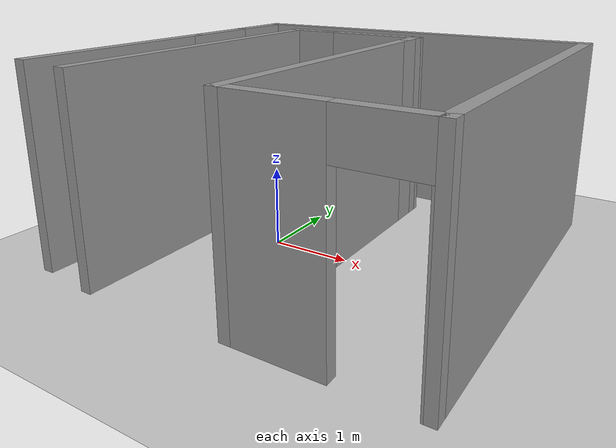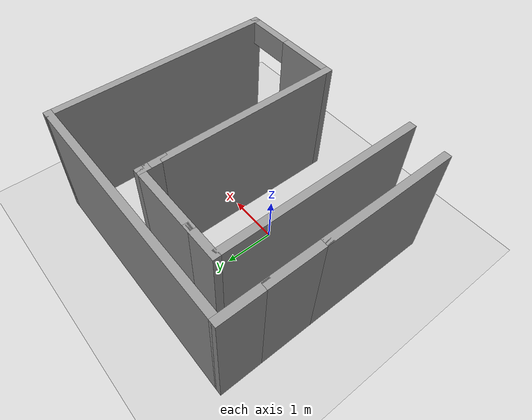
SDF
<sdf version="1.7">
 <world name="default">
  <light name="sun" type="directional">
   <pose>0 0 10 0 -0 0</pose>
   <diffuse>0.8 0.8 0.8 1</diffuse>
   <specular>0.2 0.2 0.2 1</specular>
   <attenuation>
    <range>1000</range>
    <constant>0.9</constant>
    <linear>0.01</linear>
    <quadratic>0.001</quadratic>
   </attenuation>
   <direction>-0.5 0.1 -0.9</direction>
   <spot><inner_angle>0</inner_angle><outer_angle>0</outer_angle><falloff>0</falloff></spot>
  </light>
  <model name="ground_plane">
   <static>1</static>
   <link name="link">
    <collision name="collision">
     <geometry><plane><normal>0 0 1</normal><size>100 100</size></plane></geometry>
     <surface><friction><ode><mu>100</mu><mu2>50</mu2></ode></friction></surface>
    </collision>
    <visual name="visual">
     <cast_shadows>0</cast_shadows>
     <geometry><plane><normal>0 0 1</normal><size>100 100</size></plane></geometry>
     <material>
      <script><uri>file://media/materials/scripts/gazebo.material</uri><name>Gazebo/Grey</name></script>
     </material>
    </visual>
   </link>
  </model>
  <gravity>0 0 -9.8</gravity>
  <magnetic_field>6e-06 2.3e-05 -4.2e-05</magnetic_field>
  <atmosphere type="adiabatic"/>
  <physics type="ode">
   <max_step_size>0.001</max_step_size>
   <real_time_factor>1</real_time_factor>
   <real_time_update_rate>1000</real_time_update_rate>
  </physics>
  <scene><ambient>0.4 0.4 0.4 1</ambient><background>0.7 0.7 0.7 1</background><shadows>1</shadows></scene>
  <audio><device>default</device></audio>
  <spherical_coordinates>
   <surface_model>EARTH_WGS84</surface_model>
   <latitude_deg>0</latitude_deg>
   <longitude_deg>0</longitude_deg>
   <elevation>0</elevation>
   <heading_deg>0</heading_deg>
  </spherical_coordinates>
  <model name="my_bot">
   <link name="base_link">
    <inertial>
     <pose>0.055714 0 0.078571 0 -0 0</pose>
     <mass>0.7</mass>
     <inertia>
      <ixx>0.0064169</ixx>
      <ixy>0</ixy>
      <ixz>0.00118929</ixz>
      <iyy>0.00745405</iyy>
      <iyz>0</iyz>
      <izz>0.00876214</izz>
     </inertia>
    </inertial>
    <collision name="base_link_fixed_joint_lump__chassis_collision">
     <pose>0.05 0 0.075 0 -0 0</pose>
     <geometry><box><size>0.3 0.3 0.15</size></box></geometry>
    </collision>
    <collision name="base_link_fixed_joint_lump__caster_wheel_collision_1">
     <pose>0.14 0 0 0 -0 0</pose>
     <geometry><sphere><radius>0.05</radius></sphere></geometry>
     <surface><friction><ode><mu>0.001</mu><mu2>0.001</mu2></ode></friction></surface>
    </collision>
    <collision name="base_link_fixed_joint_lump__laser_frame_collision_2">
     <pose>0 0 0.175 0 -0 0</pose>
     <geometry><cylinder><length>0.04</length><radius>0.05</radius></cylinder></geometry>
    </collision>
    <visual name="base_link_fixed_joint_lump__chassis_visual">
     <pose>0.05 0 0.075 0 -0 0</pose>
     <geometry><box><size>0.3 0.3 0.15</size></box></geometry>
     <material>
      <script><name>Gazebo/White</name><uri>file://media/materials/scripts/gazebo.material</uri></script>
     </material>
    </visual>
    <visual name="base_link_fixed_joint_lump__caster_wheel_visual_1">
     <pose>0.14 0 0 0 -0 0</pose>
     <geometry><sphere><radius>0.05</radius></sphere></geometry>
     <material>
      <script><name>Gazebo/Black</name><uri>file://media/materials/scripts/gazebo.material</uri></script>
     </material>
    </visual>
    <visual name="base_link_fixed_joint_lump__laser_frame_visual_2">
     <pose>0 0 0.175 0 -0 0</pose>
     <geometry><cylinder><length>0.04</length><radius>0.05</radius></cylinder></geometry>
     <material>
      <script><name>Gazebo/Red</name><uri>file://media/materials/scripts/gazebo.material</uri></script>
     </material>
    </visual>
    <sensor name="laser" type="ray">
     <visualize>1</visualize>
     <update_rate>10</update_rate>
     <ray>
      <scan>
       <horizontal>
        <samples>360</samples>
        <resolution>1</resolution>
        <min_angle>-3.14</min_angle>
        <max_angle>3.14</max_angle>
       </horizontal>
       <vertical><samples>1</samples><min_angle>0</min_angle><max_angle>0</max_angle></vertical>
      </scan>
      <range><min>0.3</min><max>12</max><resolution>0.01</resolution></range>
     </ray>
     <plugin name="laser_controller" filename="libgazebo_ros_ray_sensor.so">
      <ros><argument>~/out:=scan</argument></ros>
      <output_type>sensor_msgs/LaserScan</output_type>
      <frame_name>laser_frame</frame_name>
     </plugin>
     <pose>0 0 0.175 0 -0 0</pose>
    </sensor>
   </link>
   <joint name="left_wheel_joint" type="revolute">
    <pose relative_to="base_link">0 0.175 0 -1.5708 0 0</pose>
    <parent>base_link</parent>
    <child>left_wheel</child>
    <axis>
     <xyz>0 0 1</xyz>
     <limit><lower>-1e+16</lower><upper>1e+16</upper></limit>
     <dynamics><spring_reference>0</spring_reference><spring_stiffness>0</spring_stiffness></dynamics>
    </axis>
   </joint>
   <link name="left_wheel">
    <pose relative_to="left_wheel_joint">0 0 0 0 -0 0</pose>
    <inertial>
     <mass>0.1</mass>
     <inertia>
      <ixx>7.58333e-05</ixx>
      <ixy>0</ixy>
      <ixz>0</ixz>
      <iyy>7.58333e-05</iyy>
      <iyz>0</iyz>
      <izz>0.000125</izz>
     </inertia>
    </inertial>
    <collision name="left_wheel_collision">
     <geometry><cylinder><length>0.04</length><radius>0.05</radius></cylinder></geometry>
    </collision>
    <visual name="left_wheel_visual">
     <geometry><cylinder><length>0.04</length><radius>0.05</radius></cylinder></geometry>
     <material>
      <script><name>Gazebo/Blue</name><uri>file://media/materials/scripts/gazebo.material</uri></script>
     </material>
    </visual>
   </link>
   <joint name="right_wheel_joint" type="revolute">
    <pose relative_to="base_link">0 -0.175 0 1.5708 -0 0</pose>
    <parent>base_link</parent>
    <child>right_wheel</child>
    <axis>
     <xyz>0 0 -1</xyz>
     <limit><lower>-1e+16</lower><upper>1e+16</upper></limit>
     <dynamics><spring_reference>0</spring_reference><spring_stiffness>0</spring_stiffness></dynamics>
    </axis>
   </joint>
   <link name="right_wheel">
    <pose relative_to="right_wheel_joint">0 0 0 0 -0 0</pose>
    <inertial>
     <mass>0.1</mass>
     <inertia>
      <ixx>7.58333e-05</ixx>
      <ixy>0</ixy>
      <ixz>0</ixz>
      <iyy>7.58333e-05</iyy>
      <iyz>0</iyz>
      <izz>0.000125</izz>
     </inertia>
    </inertial>
    <collision name="right_wheel_collision">
     <geometry><cylinder><length>0.04</length><radius>0.05</radius></cylinder></geometry>
    </collision>
    <visual name="right_wheel_visual">
     <geometry><cylinder><length>0.04</length><radius>0.05</radius></cylinder></geometry>
     <material>
      <script><name>Gazebo/Blue</name><uri>file://media/materials/scripts/gazebo.material</uri></script>
     </material>
    </visual>
   </link>
   <static>0</static>
   <plugin name="diff_drive" filename="libgazebo_ros_diff_drive.so">
    <left_joint>left_wheel_joint</left_joint>
    <right_joint>right_wheel_joint</right_joint>
    <wheel_separation>0.35</wheel_separation>
    <wheel_diameter>0.1</wheel_diameter>
    <max_wheel_torque>200</max_wheel_torque>
    <max_wheel_acceleration>10.0</max_wheel_acceleration>
    <odometry_frame>odom</odometry_frame>
    <robot_base_frame>base_link</robot_base_frame>
    <publish_odom>1</publish_odom>
    <publish_odom_tf>1</publish_odom_tf>
    <publish_wheel_tf>1</publish_wheel_tf>
   </plugin>
   <pose>0.000531 8e-06 0.05 0 1e-06 -1.3e-05</pose>
  </model>
  <model name="House">
   <pose>0.600886 0.217407 0 0 -0 0</pose>
   <link name="Wall_0">
    <collision name="Wall_0_Collision">
     <geometry><box><size>2.75 0.15 2.5</size></box></geometry>
     <pose>0 0 1.25 0 -0 0</pose>
    </collision>
    <visual name="Wall_0_Visual">
     <pose>0 0 1.25 0 -0 0</pose>
     <geometry><box><size>2.75 0.15 2.5</size></box></geometry>
     <material>
      <script><uri>file://media/materials/scripts/gazebo.material</uri><name>Gazebo/Grey</name></script>
      <ambient>1 1 1 1</ambient>
     </material>
     <meta><layer>0</layer></meta>
    </visual>
    <pose>-2.425 -0.925 0 0 -0 1.5708</pose>
   </link>
   <link name="Wall_10">
    <collision name="Wall_10_Collision">
     <geometry><box><size>0.5 0.15 2.5</size></box></geometry>
     <pose>0 0 1.25 0 -0 0</pose>
    </collision>
    <visual name="Wall_10_Visual">
     <pose>0 0 1.25 0 -0 0</pose>
     <geometry><box><size>0.5 0.15 2.5</size></box></geometry>
     <material>
      <script><uri>file://media/materials/scripts/gazebo.material</uri><name>Gazebo/Grey</name></script>
      <ambient>1 1 1 1</ambient>
     </material>
     <meta><layer>0</layer></meta>
    </visual>
    <pose>0.325 1.5 0 0 -0 1.5708</pose>
   </link>
   <link name="Wall_11">
    <collision name="Wall_11_Collision">
     <geometry><box><size>0.25 0.15 2.5</size></box></geometry>
     <pose>0 0 1.25 0 -0 0</pose>
    </collision>
    <visual name="Wall_11_Visual">
     <pose>0 0 1.25 0 -0 0</pose>
     <geometry><box><size>0.25 0.15 2.5</size></box></geometry>
     <material>
      <script><uri>file://media/materials/scripts/gazebo.material</uri><name>Gazebo/Grey</name></script>
      <ambient>1 1 1 1</ambient>
     </material>
     <meta><layer>0</layer></meta>
    </visual>
    <pose>0.325 1.725 0 0 -0 1.5708</pose>
   </link>
   <link name="Wall_12">
    <collision name="Wall_12_Collision">
     <geometry><box><size>1.5 0.15 2.5</size></box></geometry>
     <pose>0 0 1.25 0 -0 0</pose>
    </collision>
    <visual name="Wall_12_Visual">
     <pose>0 0 1.25 0 -0 0</pose>
     <geometry><box><size>1.5 0.15 2.5</size></box></geometry>
     <material>
      <script><uri>file://media/materials/scripts/gazebo.material</uri><name>Gazebo/Grey</name></script>
      <ambient>1 1 1 1</ambient>
     </material>
     <meta><layer>0</layer></meta>
    </visual>
    <pose>-0.35 1.775 0 0 -0 3.14159</pose>
   </link>
   <link name="Wall_13">
    <collision name="Wall_13_Collision">
     <geometry><box><size>0.75 0.15 2.5</size></box></geometry>
     <pose>0 0 1.25 0 -0 0</pose>
    </collision>
    <visual name="Wall_13_Visual">
     <pose>0 0 1.25 0 -0 0</pose>
     <geometry><box><size>0.75 0.15 2.5</size></box></geometry>
     <material>
      <script><uri>file://media/materials/scripts/gazebo.material</uri><name>Gazebo/Grey</name></script>
      <ambient>1 1 1 1</ambient>
     </material>
     <meta><layer>0</layer></meta>
    </visual>
    <pose>-1.325 1.775 0 0 -0 3.14159</pose>
   </link>
   <link name="Wall_14">
    <collision name="Wall_14_Collision">
     <geometry><box><size>4.25 0.15 2.5</size></box></geometry>
     <pose>0 0 1.25 0 -0 0</pose>
    </collision>
    <visual name="Wall_14_Visual">
     <pose>0 0 1.25 0 -0 0</pose>
     <geometry><box><size>4.25 0.15 2.5</size></box></geometry>
     <material>
      <script><uri>file://media/materials/scripts/gazebo.material</uri><name>Gazebo/Grey</name></script>
      <ambient>1 1 1 1</ambient>
     </material>
     <meta><layer>0</layer></meta>
    </visual>
    <pose>-1.625 -0.275 0 0 -0 -1.5708</pose>
   </link>
   <link name="Wall_4">
    <collision name="Wall_4_Collision">
     <geometry><box><size>1.25 0.15 2.5</size></box></geometry>
     <pose>0 0 1.25 0 -0 0</pose>
    </collision>
    <visual name="Wall_4_Visual">
     <pose>0 0 1.25 0 -0 0</pose>
     <geometry><box><size>1.25 0.15 2.5</size></box></geometry>
     <material>
      <script><uri>file://media/materials/scripts/gazebo.material</uri><name>Gazebo/Grey</name></script>
      <ambient>1 1 1 1</ambient>
     </material>
     <meta><layer>0</layer></meta>
    </visual>
    <pose>-2.425 0.925 0 0 -0 1.5708</pose>
   </link>
   <link name="Wall_5">
    <collision name="Wall_5_Collision">
     <geometry><box><size>1 0.15 2.5</size></box></geometry>
     <pose>0 0 1.25 0 -0 0</pose>
    </collision>
    <visual name="Wall_5_Visual">
     <pose>0 0 1.25 0 -0 0</pose>
     <geometry><box><size>1 0.15 2.5</size></box></geometry>
     <material>
      <script><uri>file://media/materials/scripts/gazebo.material</uri><name>Gazebo/Grey</name></script>
      <ambient>1 1 1 1</ambient>
     </material>
     <meta><layer>0</layer></meta>
    </visual>
    <pose>-2.425 1.9 0 0 -0 1.5708</pose>
   </link>
   <link name="Wall_6">
    <collision name="Wall_6_Collision">
     <geometry><box><size>5 0.15 2.5</size></box></geometry>
     <pose>0 0 1.25 0 -0 0</pose>
    </collision>
    <visual name="Wall_6_Visual">
     <pose>0 0 1.25 0 -0 0</pose>
     <geometry><box><size>5 0.15 2.5</size></box></geometry>
     <material>
      <script><uri>file://media/materials/scripts/gazebo.material</uri><name>Gazebo/Grey</name></script>
      <ambient>1 1 1 1</ambient>
     </material>
     <meta><layer>0</layer></meta>
    </visual>
    <pose>-0 2.325 0 0 -0 0</pose>
   </link>
   <link name="Wall_7">
    <collision name="Wall_7_Collision">
     <geometry><box><size>4.75 0.15 2.5</size></box></geometry>
     <pose>0 0 1.25 0 -0 0</pose>
    </collision>
    <visual name="Wall_7_Visual">
     <pose>0 0 1.25 0 -0 0</pose>
     <geometry><box><size>4.75 0.15 2.5</size></box></geometry>
     <material>
      <script><uri>file://media/materials/scripts/gazebo.material</uri><name>Gazebo/Grey</name></script>
      <ambient>1 1 1 1</ambient>
     </material>
     <meta><layer>0</layer></meta>
    </visual>
    <pose>2.425 0.025 0 0 -0 -1.5708</pose>
   </link>
   <link name="Wall_8">
    <pose>1.375 -2.275 0 0 -0 3.14159</pose>
    <visual name="Wall_8_Visual_0">
     <pose>-1.06269 0 1.25 0 -0 0</pose>
     <geometry><box><size>0.124619 0.15 2.5</size></box></geometry>
     <material>
      <script><uri>file://media/materials/scripts/gazebo.material</uri><name>Gazebo/Grey</name></script>
      <ambient>1 1 1 1</ambient>
     </material>
     <meta><layer>0</layer></meta>
    </visual>
    <collision name="Wall_8_Collision_0">
     <geometry><box><size>0.124619 0.15 2.5</size></box></geometry>
     <pose>-1.06269 0 1.25 0 -0 0</pose>
    </collision>
    <visual name="Wall_8_Visual_1">
     <pose>0.51231 0 1.25 0 -0 0</pose>
     <geometry><box><size>1.22538 0.15 2.5</size></box></geometry>
     <material>
      <script><uri>file://media/materials/scripts/gazebo.material</uri><name>Gazebo/Grey</name></script>
      <ambient>1 1 1 1</ambient>
     </material>
     <meta><layer>0</layer></meta>
    </visual>
    <collision name="Wall_8_Collision_1">
     <geometry><box><size>1.22538 0.15 2.5</size></box></geometry>
     <pose>0.51231 0 1.25 0 -0 0</pose>
    </collision>
    <visual name="Wall_8_Visual_2">
     <pose>-0.550381 0 2.25 0 -0 0</pose>
     <geometry><box><size>0.9 0.15 0.5</size></box></geometry>
     <material>
      <script><uri>file://media/materials/scripts/gazebo.material</uri><name>Gazebo/Grey</name></script>
      <ambient>1 1 1 1</ambient>
     </material>
     <meta><layer>0</layer></meta>
    </visual>
    <collision name="Wall_8_Collision_2">
     <geometry><box><size>0.9 0.15 0.5</size></box></geometry>
     <pose>-0.550381 0 2.25 0 -0 0</pose>
    </collision>
   </link>
   <link name="Wall_9">
    <collision name="Wall_9_Collision">
     <geometry><box><size>3.75 0.15 2.5</size></box></geometry>
     <pose>0 0 1.25 0 -0 0</pose>
    </collision>
    <visual name="Wall_9_Visual">
     <pose>0 0 1.25 0 -0 0</pose>
     <geometry><box><size>3.75 0.15 2.5</size></box></geometry>
     <material>
      <script><uri>file://media/materials/scripts/gazebo.material</uri><name>Gazebo/Grey</name></script>
      <ambient>1 1 1 1</ambient>
     </material>
     <meta><layer>0</layer></meta>
    </visual>
    <pose>0.325 -0.475 0 0 -0 1.5708</pose>
   </link>
   <static>1</static>
  </model>
 </world>
</sdf>
